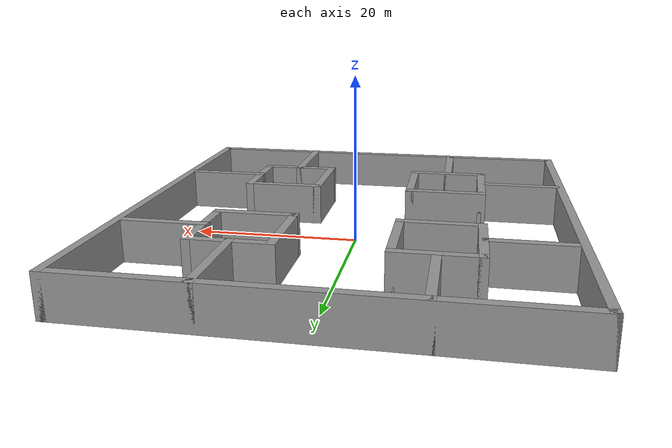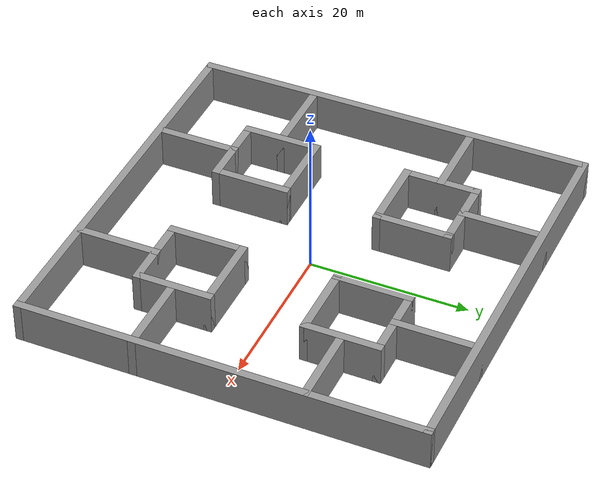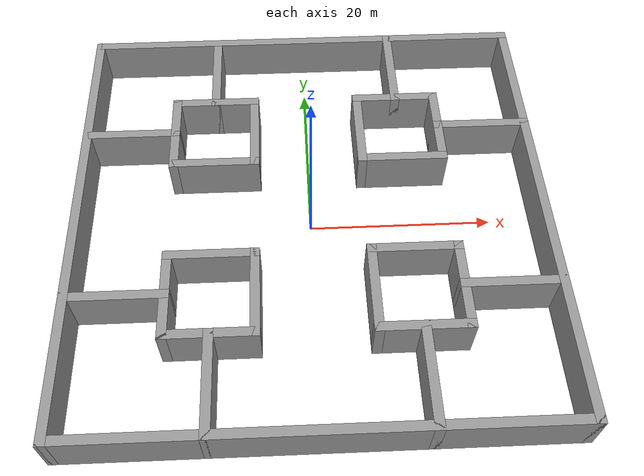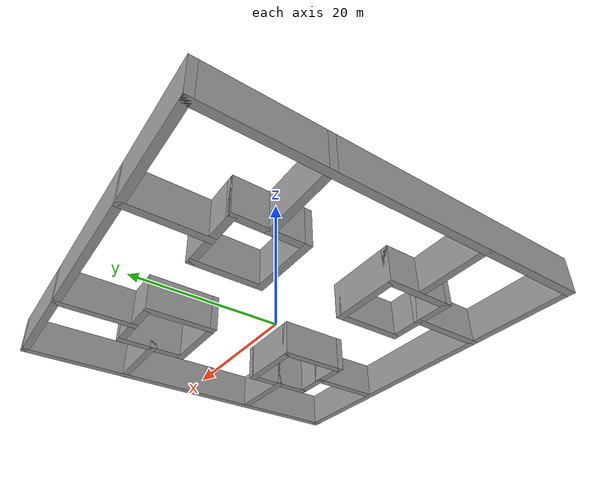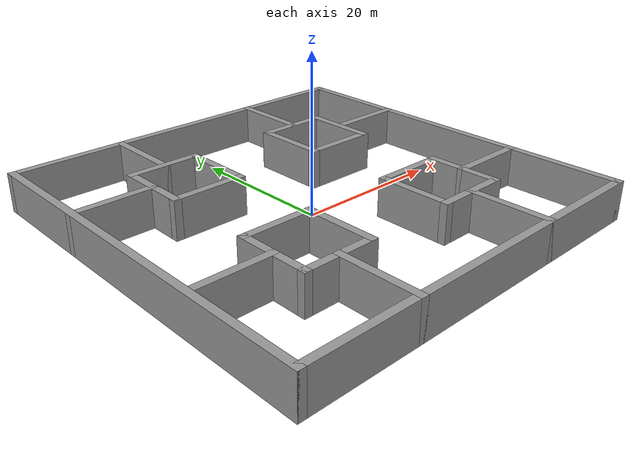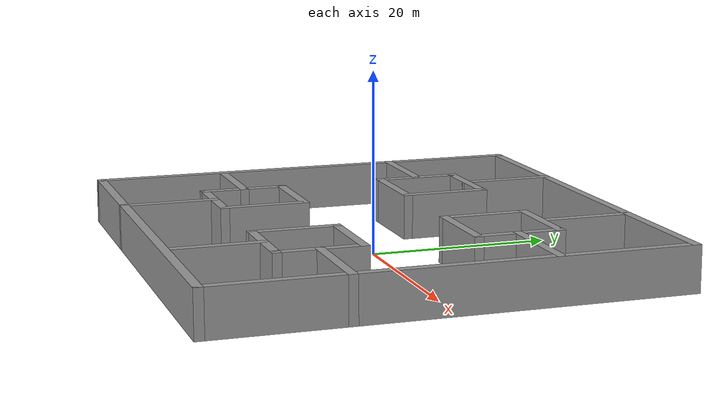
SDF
<?xml version='1.0'?>
<sdf version='1.7'>
  <model name='Map2'>
    <pose>0 0 0 0 -0 0</pose>
    <link name='Wall_12'>
      <collision name='Wall_12_Collision'>
        <geometry>
          <box>
            <size>51 1 5</size>
          </box>
        </geometry>
        <pose>0 0 2.5 0 -0 0</pose>
      </collision>
      <visual name='Wall_12_Visual'>
        <pose>0 0 2.5 0 -0 0</pose>
        <geometry>
          <box>
            <size>51 1 5</size>
          </box>
        </geometry>
        <material>
          <script>
            <uri>file://media/materials/scripts/gazebo.material</uri>
            <name>Gazebo/Grey</name>
          </script>
          <ambient>1 1 1 1</ambient>
        </material>
        <meta>
          <layer>0</layer>
        </meta>
      </visual>
      <pose>-25 0 0 0 -0 -1.5708</pose>
    </link>
    <link name='Wall_14'>
      <collision name='Wall_14_Collision'>
        <geometry>
          <box>
            <size>51 1 5</size>
          </box>
        </geometry>
        <pose>0 0 2.5 0 -0 0</pose>
      </collision>
      <visual name='Wall_14_Visual'>
        <pose>0 0 2.5 0 -0 0</pose>
        <geometry>
          <box>
            <size>51 1 5</size>
          </box>
        </geometry>
        <material>
          <script>
            <uri>file://media/materials/scripts/gazebo.material</uri>
            <name>Gazebo/Grey</name>
          </script>
          <ambient>1 1 1 1</ambient>
        </material>
        <meta>
          <layer>0</layer>
        </meta>
      </visual>
      <pose>0 25 0 0 -0 0</pose>
    </link>
    <link name='Wall_16'>
      <collision name='Wall_16_Collision'>
        <geometry>
          <box>
            <size>51 1 5</size>
          </box>
        </geometry>
        <pose>0 0 2.5 0 -0 0</pose>
      </collision>
      <visual name='Wall_16_Visual'>
        <pose>0 0 2.5 0 -0 0</pose>
        <geometry>
          <box>
            <size>51 1 5</size>
          </box>
        </geometry>
        <material>
          <script>
            <uri>file://media/materials/scripts/gazebo.material</uri>
            <name>Gazebo/Grey</name>
          </script>
          <ambient>1 1 1 1</ambient>
        </material>
        <meta>
          <layer>0</layer>
        </meta>
      </visual>
      <pose>25 0 0 0 -0 -1.5708</pose>
    </link>
    <link name='Wall_18'>
      <collision name='Wall_18_Collision'>
        <geometry>
          <box>
            <size>51 1 5</size>
          </box>
        </geometry>
        <pose>0 0 2.5 0 -0 0</pose>
      </collision>
      <visual name='Wall_18_Visual'>
        <pose>0 0 2.5 0 -0 0</pose>
        <geometry>
          <box>
            <size>51 1 5</size>
          </box>
        </geometry>
        <material>
          <script>
            <uri>file://media/materials/scripts/gazebo.material</uri>
            <name>Gazebo/Grey</name>
          </script>
          <ambient>1 1 1 1</ambient>
        </material>
        <meta>
          <layer>0</layer>
        </meta>
      </visual>
      <pose>0 -25 0 0 -0 0</pose>
    </link>
    <link name='Wall_20'>
      <collision name='Wall_20_Collision'>
        <geometry>
          <box>
            <size>11 1 5</size>
          </box>
        </geometry>
        <pose>0 0 2.5 0 -0 0</pose>
      </collision>
      <visual name='Wall_20_Visual'>
        <pose>0 0 2.5 0 -0 0</pose>
        <geometry>
          <box>
            <size>11 1 5</size>
          </box>
        </geometry>
        <material>
          <script>
            <uri>file://media/materials/scripts/gazebo.material</uri>
            <name>Gazebo/Grey</name>
          </script>
          <ambient>1 1 1 1</ambient>
        </material>
        <meta>
          <layer>0</layer>
        </meta>
      </visual>
      <pose>20 10.5 0 0 -0 3.14159</pose>
    </link>
    <link name='Wall_22'>
      <collision name='Wall_22_Collision'>
        <geometry>
          <box>
            <size>11 1 5</size>
          </box>
        </geometry>
        <pose>0 0 2.5 0 -0 0</pose>
      </collision>
      <visual name='Wall_22_Visual'>
        <pose>0 0 2.5 0 -0 0</pose>
        <geometry>
          <box>
            <size>11 1 5</size>
          </box>
        </geometry>
        <material>
          <script>
            <uri>file://media/materials/scripts/gazebo.material</uri>
            <name>Gazebo/Grey</name>
          </script>
          <ambient>1 1 1 1</ambient>
        </material>
        <meta>
          <layer>0</layer>
        </meta>
      </visual>
      <pose>10.5 20 0 0 -0 -1.5708</pose>
    </link>
    <link name='Wall_24'>
      <collision name='Wall_24_Collision'>
        <geometry>
          <box>
            <size>10 1 5</size>
          </box>
        </geometry>
        <pose>0 0 2.5 0 -0 0</pose>
      </collision>
      <visual name='Wall_24_Visual'>
        <pose>0 0 2.5 0 -0 0</pose>
        <geometry>
          <box>
            <size>10 1 5</size>
          </box>
        </geometry>
        <material>
          <script>
            <uri>file://media/materials/scripts/gazebo.material</uri>
            <name>Gazebo/Grey</name>
          </script>
          <ambient>1 1 1 1</ambient>
        </material>
        <meta>
          <layer>0</layer>
        </meta>
      </visual>
      <pose>15 10.5 0 0 -0 -1.5708</pose>
    </link>
    <link name='Wall_26'>
      <collision name='Wall_26_Collision'>
        <geometry>
          <box>
            <size>10 1 5</size>
          </box>
        </geometry>
        <pose>0 0 2.5 0 -0 0</pose>
      </collision>
      <visual name='Wall_26_Visual'>
        <pose>0 0 2.5 0 -0 0</pose>
        <geometry>
          <box>
            <size>10 1 5</size>
          </box>
        </geometry>
        <material>
          <script>
            <uri>file://media/materials/scripts/gazebo.material</uri>
            <name>Gazebo/Grey</name>
          </script>
          <ambient>1 1 1 1</ambient>
        </material>
        <meta>
          <layer>0</layer>
        </meta>
      </visual>
      <pose>10.5 15 0 0 -0 3.14159</pose>
    </link>
    <link name='Wall_28'>
      <collision name='Wall_28_Collision'>
        <geometry>
          <box>
            <size>10 1 5</size>
          </box>
        </geometry>
        <pose>0 0 2.5 0 -0 0</pose>
      </collision>
      <visual name='Wall_28_Visual'>
        <pose>0 0 2.5 0 -0 0</pose>
        <geometry>
          <box>
            <size>10 1 5</size>
          </box>
        </geometry>
        <material>
          <script>
            <uri>file://media/materials/scripts/gazebo.material</uri>
            <name>Gazebo/Grey</name>
          </script>
          <ambient>1 1 1 1</ambient>
        </material>
        <meta>
          <layer>0</layer>
        </meta>
      </visual>
      <pose>10.5 6 0 0 -0 3.14159</pose>
    </link>
    <link name='Wall_30'>
      <collision name='Wall_30_Collision'>
        <geometry>
          <box>
            <size>10 1 5</size>
          </box>
        </geometry>
        <pose>0 0 2.5 0 -0 0</pose>
      </collision>
      <visual name='Wall_30_Visual'>
        <pose>0 0 2.5 0 -0 0</pose>
        <geometry>
          <box>
            <size>10 1 5</size>
          </box>
        </geometry>
        <material>
          <script>
            <uri>file://media/materials/scripts/gazebo.material</uri>
            <name>Gazebo/Grey</name>
          </script>
          <ambient>1 1 1 1</ambient>
        </material>
        <meta>
          <layer>0</layer>
        </meta>
      </visual>
      <pose>6 10.5 0 0 -0 1.5708</pose>
    </link>
    <link name='Wall_33'>
      <collision name='Wall_33_Collision'>
        <geometry>
          <box>
            <size>11 1 5</size>
          </box>
        </geometry>
        <pose>0 0 2.5 0 -0 0</pose>
      </collision>
      <visual name='Wall_33_Visual'>
        <pose>0 0 2.5 0 -0 0</pose>
        <geometry>
          <box>
            <size>11 1 5</size>
          </box>
        </geometry>
        <material>
          <script>
            <uri>file://media/materials/scripts/gazebo.material</uri>
            <name>Gazebo/Grey</name>
          </script>
          <ambient>1 1 1 1</ambient>
        </material>
        <meta>
          <layer>0</layer>
        </meta>
      </visual>
      <pose>-20 10.5 0 0 -0 0</pose>
    </link>
    <link name='Wall_39'>
      <collision name='Wall_39_Collision'>
        <geometry>
          <box>
            <size>11 1 5</size>
          </box>
        </geometry>
        <pose>0 0 2.5 0 -0 0</pose>
      </collision>
      <visual name='Wall_39_Visual'>
        <pose>0 0 2.5 0 -0 0</pose>
        <geometry>
          <box>
            <size>11 1 5</size>
          </box>
        </geometry>
        <material>
          <script>
            <uri>file://media/materials/scripts/gazebo.material</uri>
            <name>Gazebo/Grey</name>
          </script>
          <ambient>1 1 1 1</ambient>
        </material>
        <meta>
          <layer>0</layer>
        </meta>
      </visual>
      <pose>-10.5 20 0 0 -0 -1.5708</pose>
    </link>
    <link name='Wall_41'>
      <collision name='Wall_41_Collision'>
        <geometry>
          <box>
            <size>11 1 5</size>
          </box>
        </geometry>
        <pose>0 0 2.5 0 -0 0</pose>
      </collision>
      <visual name='Wall_41_Visual'>
        <pose>0 0 2.5 0 -0 0</pose>
        <geometry>
          <box>
            <size>11 1 5</size>
          </box>
        </geometry>
        <material>
          <script>
            <uri>file://media/materials/scripts/gazebo.material</uri>
            <name>Gazebo/Grey</name>
          </script>
          <ambient>1 1 1 1</ambient>
        </material>
        <meta>
          <layer>0</layer>
        </meta>
      </visual>
      <pose>-20 -10.5 0 0 -0 0</pose>
    </link>
    <link name='Wall_43'>
      <collision name='Wall_43_Collision'>
        <geometry>
          <box>
            <size>11 1 5</size>
          </box>
        </geometry>
        <pose>0 0 2.5 0 -0 0</pose>
      </collision>
      <visual name='Wall_43_Visual'>
        <pose>0 0 2.5 0 -0 0</pose>
        <geometry>
          <box>
            <size>11 1 5</size>
          </box>
        </geometry>
        <material>
          <script>
            <uri>file://media/materials/scripts/gazebo.material</uri>
            <name>Gazebo/Grey</name>
          </script>
          <ambient>1 1 1 1</ambient>
        </material>
        <meta>
          <layer>0</layer>
        </meta>
      </visual>
      <pose>-10.5 -20 0 0 -0 1.5708</pose>
    </link>
    <link name='Wall_45'>
      <collision name='Wall_45_Collision'>
        <geometry>
          <box>
            <size>11 1 5</size>
          </box>
        </geometry>
        <pose>0 0 2.5 0 -0 0</pose>
      </collision>
      <visual name='Wall_45_Visual'>
        <pose>0 0 2.5 0 -0 0</pose>
        <geometry>
          <box>
            <size>11 1 5</size>
          </box>
        </geometry>
        <material>
          <script>
            <uri>file://media/materials/scripts/gazebo.material</uri>
            <name>Gazebo/Grey</name>
          </script>
          <ambient>1 1 1 1</ambient>
        </material>
        <meta>
          <layer>0</layer>
        </meta>
      </visual>
      <pose>10.5 -20 0 0 -0 1.5708</pose>
    </link>
    <link name='Wall_47'>
      <collision name='Wall_47_Collision'>
        <geometry>
          <box>
            <size>11 1 5</size>
          </box>
        </geometry>
        <pose>0 0 2.5 0 -0 0</pose>
      </collision>
      <visual name='Wall_47_Visual'>
        <pose>0 0 2.5 0 -0 0</pose>
        <geometry>
          <box>
            <size>11 1 5</size>
          </box>
        </geometry>
        <material>
          <script>
            <uri>file://media/materials/scripts/gazebo.material</uri>
            <name>Gazebo/Grey</name>
          </script>
          <ambient>1 1 1 1</ambient>
        </material>
        <meta>
          <layer>0</layer>
        </meta>
      </visual>
      <pose>20 -10.5 0 0 -0 3.14159</pose>
    </link>
    <link name='Wall_49'>
      <collision name='Wall_49_Collision'>
        <geometry>
          <box>
            <size>10 1 5</size>
          </box>
        </geometry>
        <pose>0 0 2.5 0 -0 0</pose>
      </collision>
      <visual name='Wall_49_Visual'>
        <pose>0 0 2.5 0 -0 0</pose>
        <geometry>
          <box>
            <size>10 1 5</size>
          </box>
        </geometry>
        <material>
          <script>
            <uri>file://media/materials/scripts/gazebo.material</uri>
            <name>Gazebo/Grey</name>
          </script>
          <ambient>1 1 1 1</ambient>
        </material>
        <meta>
          <layer>0</layer>
        </meta>
      </visual>
      <pose>-10.5 15 0 0 -0 0</pose>
    </link>
    <link name='Wall_50'>
      <collision name='Wall_50_Collision'>
        <geometry>
          <box>
            <size>10 1 5</size>
          </box>
        </geometry>
        <pose>0 0 2.5 0 -0 0</pose>
      </collision>
      <visual name='Wall_50_Visual'>
        <pose>0 0 2.5 0 -0 0</pose>
        <geometry>
          <box>
            <size>10 1 5</size>
          </box>
        </geometry>
        <material>
          <script>
            <uri>file://media/materials/scripts/gazebo.material</uri>
            <name>Gazebo/Grey</name>
          </script>
          <ambient>1 1 1 1</ambient>
        </material>
        <meta>
          <layer>0</layer>
        </meta>
      </visual>
      <pose>-6 10.5 0 0 -0 -1.5708</pose>
    </link>
    <link name='Wall_51'>
      <collision name='Wall_51_Collision'>
        <geometry>
          <box>
            <size>10 1 5</size>
          </box>
        </geometry>
        <pose>0 0 2.5 0 -0 0</pose>
      </collision>
      <visual name='Wall_51_Visual'>
        <pose>0 0 2.5 0 -0 0</pose>
        <geometry>
          <box>
            <size>10 1 5</size>
          </box>
        </geometry>
        <material>
          <script>
            <uri>file://media/materials/scripts/gazebo.material</uri>
            <name>Gazebo/Grey</name>
          </script>
          <ambient>1 1 1 1</ambient>
        </material>
        <meta>
          <layer>0</layer>
        </meta>
      </visual>
      <pose>-10.5 6 0 0 -0 3.14159</pose>
    </link>
    <link name='Wall_52'>
      <collision name='Wall_52_Collision'>
        <geometry>
          <box>
            <size>10 1 5</size>
          </box>
        </geometry>
        <pose>0 0 2.5 0 -0 0</pose>
      </collision>
      <visual name='Wall_52_Visual'>
        <pose>0 0 2.5 0 -0 0</pose>
        <geometry>
          <box>
            <size>10 1 5</size>
          </box>
        </geometry>
        <material>
          <script>
            <uri>file://media/materials/scripts/gazebo.material</uri>
            <name>Gazebo/Grey</name>
          </script>
          <ambient>1 1 1 1</ambient>
        </material>
        <meta>
          <layer>0</layer>
        </meta>
      </visual>
      <pose>-15 10.5 0 0 -0 1.5708</pose>
    </link>
    <link name='Wall_54'>
      <collision name='Wall_54_Collision'>
        <geometry>
          <box>
            <size>10 1 5</size>
          </box>
        </geometry>
        <pose>0 0 2.5 0 -0 0</pose>
      </collision>
      <visual name='Wall_54_Visual'>
        <pose>0 0 2.5 0 -0 0</pose>
        <geometry>
          <box>
            <size>10 1 5</size>
          </box>
        </geometry>
        <material>
          <script>
            <uri>file://media/materials/scripts/gazebo.material</uri>
            <name>Gazebo/Grey</name>
          </script>
          <ambient>1 1 1 1</ambient>
        </material>
        <meta>
          <layer>0</layer>
        </meta>
      </visual>
      <pose>-10.5 -6 0 0 -0 0</pose>
    </link>
    <link name='Wall_55'>
      <collision name='Wall_55_Collision'>
        <geometry>
          <box>
            <size>10 1 5</size>
          </box>
        </geometry>
        <pose>0 0 2.5 0 -0 0</pose>
      </collision>
      <visual name='Wall_55_Visual'>
        <pose>0 0 2.5 0 -0 0</pose>
        <geometry>
          <box>
            <size>10 1 5</size>
          </box>
        </geometry>
        <material>
          <script>
            <uri>file://media/materials/scripts/gazebo.material</uri>
            <name>Gazebo/Grey</name>
          </script>
          <ambient>1 1 1 1</ambient>
        </material>
        <meta>
          <layer>0</layer>
        </meta>
      </visual>
      <pose>-6 -10.5 0 0 -0 -1.5708</pose>
    </link>
    <link name='Wall_56'>
      <collision name='Wall_56_Collision'>
        <geometry>
          <box>
            <size>10 1 5</size>
          </box>
        </geometry>
        <pose>0 0 2.5 0 -0 0</pose>
      </collision>
      <visual name='Wall_56_Visual'>
        <pose>0 0 2.5 0 -0 0</pose>
        <geometry>
          <box>
            <size>10 1 5</size>
          </box>
        </geometry>
        <material>
          <script>
            <uri>file://media/materials/scripts/gazebo.material</uri>
            <name>Gazebo/Grey</name>
          </script>
          <ambient>1 1 1 1</ambient>
        </material>
        <meta>
          <layer>0</layer>
        </meta>
      </visual>
      <pose>-10.5 -15 0 0 -0 3.14159</pose>
    </link>
    <link name='Wall_57'>
      <collision name='Wall_57_Collision'>
        <geometry>
          <box>
            <size>10 1 5</size>
          </box>
        </geometry>
        <pose>0 0 2.5 0 -0 0</pose>
      </collision>
      <visual name='Wall_57_Visual'>
        <pose>0 0 2.5 0 -0 0</pose>
        <geometry>
          <box>
            <size>10 1 5</size>
          </box>
        </geometry>
        <material>
          <script>
            <uri>file://media/materials/scripts/gazebo.material</uri>
            <name>Gazebo/Grey</name>
          </script>
          <ambient>1 1 1 1</ambient>
        </material>
        <meta>
          <layer>0</layer>
        </meta>
      </visual>
      <pose>-15 -10.5 0 0 -0 1.5708</pose>
    </link>
    <link name='Wall_59'>
      <collision name='Wall_59_Collision'>
        <geometry>
          <box>
            <size>10 1 5</size>
          </box>
        </geometry>
        <pose>0 0 2.5 0 -0 0</pose>
      </collision>
      <visual name='Wall_59_Visual'>
        <pose>0 0 2.5 0 -0 0</pose>
        <geometry>
          <box>
            <size>10 1 5</size>
          </box>
        </geometry>
        <material>
          <script>
            <uri>file://media/materials/scripts/gazebo.material</uri>
            <name>Gazebo/Grey</name>
          </script>
          <ambient>1 1 1 1</ambient>
        </material>
        <meta>
          <layer>0</layer>
        </meta>
      </visual>
      <pose>15 -10.5 0 0 -0 -1.5708</pose>
    </link>
    <link name='Wall_60'>
      <collision name='Wall_60_Collision'>
        <geometry>
          <box>
            <size>10 1 5</size>
          </box>
        </geometry>
        <pose>0 0 2.5 0 -0 0</pose>
      </collision>
      <visual name='Wall_60_Visual'>
        <pose>0 0 2.5 0 -0 0</pose>
        <geometry>
          <box>
            <size>10 1 5</size>
          </box>
        </geometry>
        <material>
          <script>
            <uri>file://media/materials/scripts/gazebo.material</uri>
            <name>Gazebo/Grey</name>
          </script>
          <ambient>1 1 1 1</ambient>
        </material>
        <meta>
          <layer>0</layer>
        </meta>
      </visual>
      <pose>10.5 -15 0 0 -0 3.14159</pose>
    </link>
    <link name='Wall_61'>
      <collision name='Wall_61_Collision'>
        <geometry>
          <box>
            <size>10 1 5</size>
          </box>
        </geometry>
        <pose>0 0 2.5 0 -0 0</pose>
      </collision>
      <visual name='Wall_61_Visual'>
        <pose>0 0 2.5 0 -0 0</pose>
        <geometry>
          <box>
            <size>10 1 5</size>
          </box>
        </geometry>
        <material>
          <script>
            <uri>file://media/materials/scripts/gazebo.material</uri>
            <name>Gazebo/Grey</name>
          </script>
          <ambient>1 1 1 1</ambient>
        </material>
        <meta>
          <layer>0</layer>
        </meta>
      </visual>
      <pose>6 -10.5 0 0 -0 1.5708</pose>
    </link>
    <link name='Wall_62'>
      <collision name='Wall_62_Collision'>
        <geometry>
          <box>
            <size>10 1 5</size>
          </box>
        </geometry>
        <pose>0 0 2.5 0 -0 0</pose>
      </collision>
      <visual name='Wall_62_Visual'>
        <pose>0 0 2.5 0 -0 0</pose>
        <geometry>
          <box>
            <size>10 1 5</size>
          </box>
        </geometry>
        <material>
          <script>
            <uri>file://media/materials/scripts/gazebo.material</uri>
            <name>Gazebo/Grey</name>
          </script>
          <ambient>1 1 1 1</ambient>
        </material>
        <meta>
          <layer>0</layer>
        </meta>
      </visual>
      <pose>10.5 -6 0 0 -0 0</pose>
    </link>
    <static>1</static>
  </model>
</sdf>
